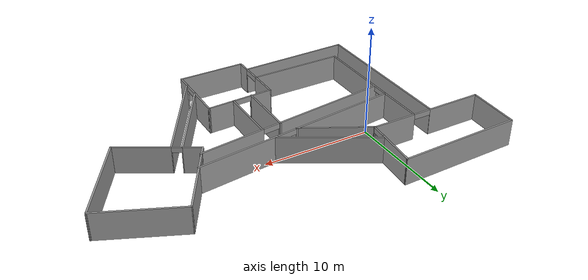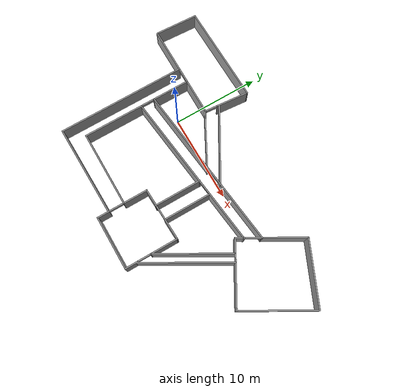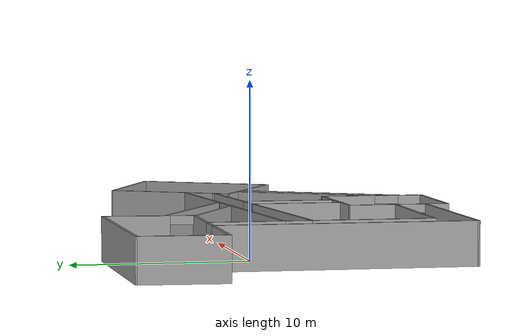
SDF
<?xml version='1.0'?>
<sdf version='1.7'>
  <model name='room1'>
    <pose>7.83202 -2.46047 0 0 -0 0</pose>
    <link name='Wall_10'>
      <pose>0.961693 -4.43326 0 0 -0 -3.10063</pose>
      <visual name='Wall_10_Visual_0'>
        <pose>-1.83632 0 1.25 0 -0 0</pose>
        <geometry>
          <box>
            <size>2.58248 0.15 2.5</size>
          </box>
        </geometry>
        <material>
          <script>
            <uri>file://media/materials/scripts/gazebo.material</uri>
            <name>Gazebo/Grey</name>
          </script>
          <ambient>1 1 1 1</ambient>
        </material>
        <meta>
          <layer>0</layer>
        </meta>
      </visual>
      <collision name='Wall_10_Collision_0'>
        <geometry>
          <box>
            <size>2.58248 0.15 2.5</size>
          </box>
        </geometry>
        <pose>-1.83632 0 1.25 0 -0 0</pose>
      </collision>
      <visual name='Wall_10_Visual_1'>
        <pose>2.09137 0 1.25 0 -0 0</pose>
        <geometry>
          <box>
            <size>2.07238 0.15 2.5</size>
          </box>
        </geometry>
        <material>
          <script>
            <uri>file://media/materials/scripts/gazebo.material</uri>
            <name>Gazebo/Grey</name>
          </script>
          <ambient>1 1 1 1</ambient>
        </material>
        <meta>
          <layer>0</layer>
        </meta>
      </visual>
      <collision name='Wall_10_Collision_1'>
        <geometry>
          <box>
            <size>2.07238 0.15 2.5</size>
          </box>
        </geometry>
        <pose>2.09137 0 1.25 0 -0 0</pose>
      </collision>
      <visual name='Wall_10_Visual_2'>
        <pose>0.255047 0 2.25 0 -0 0</pose>
        <geometry>
          <box>
            <size>1.60026 0.15 0.5</size>
          </box>
        </geometry>
        <material>
          <script>
            <uri>file://media/materials/scripts/gazebo.material</uri>
            <name>Gazebo/Grey</name>
          </script>
          <ambient>1 1 1 1</ambient>
        </material>
        <meta>
          <layer>0</layer>
        </meta>
      </visual>
      <collision name='Wall_10_Collision_2'>
        <geometry>
          <box>
            <size>1.60026 0.15 0.5</size>
          </box>
        </geometry>
        <pose>0.255047 0 2.25 0 -0 0</pose>
      </collision>
    </link>
    <link name='Wall_12'>
      <pose>8.84918 4.22502 0 0 -0 -2.0944</pose>
      <visual name='Wall_12_Visual_0'>
        <pose>-1.39281 0 1.25 0 -0 0</pose>
        <geometry>
          <box>
            <size>4.96438 0.15 2.5</size>
          </box>
        </geometry>
        <material>
          <script>
            <uri>file://media/materials/scripts/gazebo.material</uri>
            <name>Gazebo/Grey</name>
          </script>
          <ambient>1 1 1 1</ambient>
        </material>
        <meta>
          <layer>0</layer>
        </meta>
      </visual>
      <collision name='Wall_12_Collision_0'>
        <geometry>
          <box>
            <size>4.96438 0.15 2.5</size>
          </box>
        </geometry>
        <pose>-1.39281 0 1.25 0 -0 0</pose>
      </collision>
      <visual name='Wall_12_Visual_1'>
        <pose>3.31496 0 1.25 0 -0 0</pose>
        <geometry>
          <box>
            <size>1.12008 0.15 2.5</size>
          </box>
        </geometry>
        <material>
          <script>
            <uri>file://media/materials/scripts/gazebo.material</uri>
            <name>Gazebo/Grey</name>
          </script>
          <ambient>1 1 1 1</ambient>
        </material>
        <meta>
          <layer>0</layer>
        </meta>
      </visual>
      <collision name='Wall_12_Collision_1'>
        <geometry>
          <box>
            <size>1.12008 0.15 2.5</size>
          </box>
        </geometry>
        <pose>3.31496 0 1.25 0 -0 0</pose>
      </collision>
      <visual name='Wall_12_Visual_2'>
        <pose>1.92215 0 2.25 0 -0 0</pose>
        <geometry>
          <box>
            <size>1.66555 0.15 0.5</size>
          </box>
        </geometry>
        <material>
          <script>
            <uri>file://media/materials/scripts/gazebo.material</uri>
            <name>Gazebo/Grey</name>
          </script>
          <ambient>1 1 1 1</ambient>
        </material>
        <meta>
          <layer>0</layer>
        </meta>
      </visual>
      <collision name='Wall_12_Collision_2'>
        <geometry>
          <box>
            <size>1.66555 0.15 0.5</size>
          </box>
        </geometry>
        <pose>1.92215 0 2.25 0 -0 0</pose>
      </collision>
    </link>
    <link name='Wall_13'>
      <pose>10.1318 -0.903373 0 0 -0 -0.523599</pose>
      <visual name='Wall_13_Visual_0'>
        <pose>-2.90355 0 1.25 0 -0 0</pose>
        <geometry>
          <box>
            <size>1.69289 0.15 2.5</size>
          </box>
        </geometry>
        <material>
          <script>
            <uri>file://media/materials/scripts/gazebo.material</uri>
            <name>Gazebo/Grey</name>
          </script>
          <ambient>1 1 1 1</ambient>
        </material>
        <meta>
          <layer>0</layer>
        </meta>
      </visual>
      <collision name='Wall_13_Collision_0'>
        <geometry>
          <box>
            <size>1.69289 0.15 2.5</size>
          </box>
        </geometry>
        <pose>-2.90355 0 1.25 0 -0 0</pose>
      </collision>
      <visual name='Wall_13_Visual_1'>
        <pose>1.29645 0 1.25 0 -0 0</pose>
        <geometry>
          <box>
            <size>4.90711 0.15 2.5</size>
          </box>
        </geometry>
        <material>
          <script>
            <uri>file://media/materials/scripts/gazebo.material</uri>
            <name>Gazebo/Grey</name>
          </script>
          <ambient>1 1 1 1</ambient>
        </material>
        <meta>
          <layer>0</layer>
        </meta>
      </visual>
      <collision name='Wall_13_Collision_1'>
        <geometry>
          <box>
            <size>4.90711 0.15 2.5</size>
          </box>
        </geometry>
        <pose>1.29645 0 1.25 0 -0 0</pose>
      </collision>
      <visual name='Wall_13_Visual_2'>
        <pose>-1.60711 0 2.25 0 -0 0</pose>
        <geometry>
          <box>
            <size>0.9 0.15 0.5</size>
          </box>
        </geometry>
        <material>
          <script>
            <uri>file://media/materials/scripts/gazebo.material</uri>
            <name>Gazebo/Grey</name>
          </script>
          <ambient>1 1 1 1</ambient>
        </material>
        <meta>
          <layer>0</layer>
        </meta>
      </visual>
      <collision name='Wall_13_Collision_2'>
        <geometry>
          <box>
            <size>0.9 0.15 0.5</size>
          </box>
        </geometry>
        <pose>-1.60711 0 2.25 0 -0 0</pose>
      </collision>
    </link>
    <link name='Wall_14'>
      <collision name='Wall_14_Collision'>
        <geometry>
          <box>
            <size>8.5 0.15 2.5</size>
          </box>
        </geometry>
        <pose>0 0 1.25 0 -0 0</pose>
      </collision>
      <visual name='Wall_14_Visual'>
        <pose>0 0 1.25 0 -0 0</pose>
        <geometry>
          <box>
            <size>8.5 0.15 2.5</size>
          </box>
        </geometry>
        <material>
          <script>
            <uri>file://media/materials/scripts/gazebo.material</uri>
            <name>Gazebo/Grey</name>
          </script>
          <ambient>1 1 1 1</ambient>
        </material>
        <meta>
          <layer>0</layer>
        </meta>
      </visual>
      <pose>15.402 0.874783 0 0 -0 1.0472</pose>
    </link>
    <link name='Wall_15'>
      <collision name='Wall_15_Collision'>
        <geometry>
          <box>
            <size>7.53817 0.15 2.5</size>
          </box>
        </geometry>
        <pose>0 0 1.25 0 -0 0</pose>
      </collision>
      <visual name='Wall_15_Visual'>
        <pose>0 0 1.25 0 -0 0</pose>
        <geometry>
          <box>
            <size>7.53817 0.15 2.5</size>
          </box>
        </geometry>
        <material>
          <script>
            <uri>file://media/materials/scripts/gazebo.material</uri>
            <name>Gazebo/Grey</name>
          </script>
          <ambient>1 1 1 1</ambient>
        </material>
        <meta>
          <layer>0</layer>
        </meta>
      </visual>
      <pose>14.1193 6.00318 0 0 -0 2.71968</pose>
    </link>
    <link name='Wall_18'>
      <collision name='Wall_18_Collision'>
        <geometry>
          <box>
            <size>14.75 0.15 2.5</size>
          </box>
        </geometry>
        <pose>0 0 1.25 0 -0 0</pose>
      </collision>
      <visual name='Wall_18_Visual'>
        <pose>0 0 1.25 0 -0 0</pose>
        <geometry>
          <box>
            <size>14.75 0.15 2.5</size>
          </box>
        </geometry>
        <material>
          <script>
            <uri>file://media/materials/scripts/gazebo.material</uri>
            <name>Gazebo/Grey</name>
          </script>
          <ambient>1 1 1 1</ambient>
        </material>
        <meta>
          <layer>0</layer>
        </meta>
      </visual>
      <pose>-12.4545 -1.98522 0 0 -0 -1.5708</pose>
    </link>
    <link name='Wall_19'>
      <collision name='Wall_19_Collision'>
        <geometry>
          <box>
            <size>10.4672 0.15 2.5</size>
          </box>
        </geometry>
        <pose>0 0 1.25 0 -0 0</pose>
      </collision>
      <visual name='Wall_19_Visual'>
        <pose>0 0 1.25 0 -0 0</pose>
        <geometry>
          <box>
            <size>10.4672 0.15 2.5</size>
          </box>
        </geometry>
        <material>
          <script>
            <uri>file://media/materials/scripts/gazebo.material</uri>
            <name>Gazebo/Grey</name>
          </script>
          <ambient>1 1 1 1</ambient>
        </material>
        <meta>
          <layer>0</layer>
        </meta>
      </visual>
      <pose>-7.2965 -9.20445 0 0 -0 0.015658</pose>
    </link>
    <link name='Wall_2'>
      <collision name='Wall_2_Collision'>
        <geometry>
          <box>
            <size>4.94332 0.15 2.5</size>
          </box>
        </geometry>
        <pose>0 0 1.25 0 -0 0</pose>
      </collision>
      <visual name='Wall_2_Visual'>
        <pose>0 0 1.25 0 -0 0</pose>
        <geometry>
          <box>
            <size>4.94332 0.15 2.5</size>
          </box>
        </geometry>
        <material>
          <script>
            <uri>file://media/materials/scripts/gazebo.material</uri>
            <name>Gazebo/Grey</name>
          </script>
          <ambient>1 1 1 1</ambient>
        </material>
        <meta>
          <layer>0</layer>
        </meta>
      </visual>
      <pose>-17.3906 7.74557 0 0 -0 -1.62198</pose>
    </link>
    <link name='Wall_22'>
      <pose>-10.7072 -1.00533 0 0 -0 -1.5708</pose>
      <visual name='Wall_22_Visual_0'>
        <pose>-4.21418 0 1.25 0 -0 0</pose>
        <geometry>
          <box>
            <size>4.32164 0.15 2.5</size>
          </box>
        </geometry>
        <material>
          <script>
            <uri>file://media/materials/scripts/gazebo.material</uri>
            <name>Gazebo/Grey</name>
          </script>
          <ambient>1 1 1 1</ambient>
        </material>
        <meta>
          <layer>0</layer>
        </meta>
      </visual>
      <collision name='Wall_22_Collision_0'>
        <geometry>
          <box>
            <size>4.32164 0.15 2.5</size>
          </box>
        </geometry>
        <pose>-4.21418 0 1.25 0 -0 0</pose>
      </collision>
      <visual name='Wall_22_Visual_1'>
        <pose>2.89516 0 1.25 0 -0 0</pose>
        <geometry>
          <box>
            <size>6.95969 0.15 2.5</size>
          </box>
        </geometry>
        <material>
          <script>
            <uri>file://media/materials/scripts/gazebo.material</uri>
            <name>Gazebo/Grey</name>
          </script>
          <ambient>1 1 1 1</ambient>
        </material>
        <meta>
          <layer>0</layer>
        </meta>
      </visual>
      <collision name='Wall_22_Collision_1'>
        <geometry>
          <box>
            <size>6.95969 0.15 2.5</size>
          </box>
        </geometry>
        <pose>2.89516 0 1.25 0 -0 0</pose>
      </collision>
      <visual name='Wall_22_Visual_2'>
        <pose>-1.31902 0 2.25 0 -0 0</pose>
        <geometry>
          <box>
            <size>1.46867 0.15 0.5</size>
          </box>
        </geometry>
        <material>
          <script>
            <uri>file://media/materials/scripts/gazebo.material</uri>
            <name>Gazebo/Grey</name>
          </script>
          <ambient>1 1 1 1</ambient>
        </material>
        <meta>
          <layer>0</layer>
        </meta>
      </visual>
      <collision name='Wall_22_Collision_2'>
        <geometry>
          <box>
            <size>1.46867 0.15 0.5</size>
          </box>
        </geometry>
        <pose>-1.31902 0 2.25 0 -0 0</pose>
      </collision>
    </link>
    <link name='Wall_23'>
      <collision name='Wall_23_Collision'>
        <geometry>
          <box>
            <size>8.71502 0.15 2.5</size>
          </box>
        </geometry>
        <pose>0 0 1.25 0 -0 0</pose>
      </collision>
      <visual name='Wall_23_Visual'>
        <pose>0 0 1.25 0 -0 0</pose>
        <geometry>
          <box>
            <size>8.71502 0.15 2.5</size>
          </box>
        </geometry>
        <material>
          <script>
            <uri>file://media/materials/scripts/gazebo.material</uri>
            <name>Gazebo/Grey</name>
          </script>
          <ambient>1 1 1 1</ambient>
        </material>
        <meta>
          <layer>0</layer>
        </meta>
      </visual>
      <pose>-6.4072 -7.30533 0 0 -0 0</pose>
    </link>
    <link name='Wall_25'>
      <collision name='Wall_25_Collision'>
        <geometry>
          <box>
            <size>8.75 0.15 2.5</size>
          </box>
        </geometry>
        <pose>0 0 1.25 0 -0 0</pose>
      </collision>
      <visual name='Wall_25_Visual'>
        <pose>0 0 1.25 0 -0 0</pose>
        <geometry>
          <box>
            <size>8.75 0.15 2.5</size>
          </box>
        </geometry>
        <material>
          <script>
            <uri>file://media/materials/scripts/gazebo.material</uri>
            <name>Gazebo/Grey</name>
          </script>
          <ambient>1 1 1 1</ambient>
        </material>
        <meta>
          <layer>0</layer>
        </meta>
      </visual>
      <pose>6.18867 -3.62482 0 0 -0 1.0472</pose>
    </link>
    <link name='Wall_28'>
      <collision name='Wall_28_Collision'>
        <geometry>
          <box>
            <size>10.25 0.15 2.5</size>
          </box>
        </geometry>
        <pose>0 0 1.25 0 -0 0</pose>
      </collision>
      <visual name='Wall_28_Visual'>
        <pose>0 0 1.25 0 -0 0</pose>
        <geometry>
          <box>
            <size>10.25 0.15 2.5</size>
          </box>
        </geometry>
        <material>
          <script>
            <uri>file://media/materials/scripts/gazebo.material</uri>
            <name>Gazebo/Grey</name>
          </script>
          <ambient>1 1 1 1</ambient>
        </material>
        <meta>
          <layer>0</layer>
        </meta>
      </visual>
      <pose>6.6039 -4.72518 0 0 -0 1.0472</pose>
    </link>
    <link name='Wall_3'>
      <pose>-12.0693 5.3431 0 0 -0 -0.001648</pose>
      <visual name='Wall_3_Visual_0'>
        <pose>-2.91198 0 1.25 0 -0 0</pose>
        <geometry>
          <box>
            <size>5.19651 0.15 2.5</size>
          </box>
        </geometry>
        <material>
          <script>
            <uri>file://media/materials/scripts/gazebo.material</uri>
            <name>Gazebo/Grey</name>
          </script>
          <ambient>1 1 1 1</ambient>
        </material>
        <meta>
          <layer>0</layer>
        </meta>
      </visual>
      <collision name='Wall_3_Collision_0'>
        <geometry>
          <box>
            <size>5.19651 0.15 2.5</size>
          </box>
        </geometry>
        <pose>-2.91198 0 1.25 0 -0 0</pose>
      </collision>
      <visual name='Wall_3_Visual_1'>
        <pose>3.41877 0 1.25 0 -0 0</pose>
        <geometry>
          <box>
            <size>4.18295 0.15 2.5</size>
          </box>
        </geometry>
        <material>
          <script>
            <uri>file://media/materials/scripts/gazebo.material</uri>
            <name>Gazebo/Grey</name>
          </script>
          <ambient>1 1 1 1</ambient>
        </material>
        <meta>
          <layer>0</layer>
        </meta>
      </visual>
      <collision name='Wall_3_Collision_1'>
        <geometry>
          <box>
            <size>4.18295 0.15 2.5</size>
          </box>
        </geometry>
        <pose>3.41877 0 1.25 0 -0 0</pose>
      </collision>
      <visual name='Wall_3_Visual_2'>
        <pose>0.506783 0 2.25 0 -0 0</pose>
        <geometry>
          <box>
            <size>1.64102 0.15 0.5</size>
          </box>
        </geometry>
        <material>
          <script>
            <uri>file://media/materials/scripts/gazebo.material</uri>
            <name>Gazebo/Grey</name>
          </script>
          <ambient>1 1 1 1</ambient>
        </material>
        <meta>
          <layer>0</layer>
        </meta>
      </visual>
      <collision name='Wall_3_Collision_2'>
        <geometry>
          <box>
            <size>1.64102 0.15 0.5</size>
          </box>
        </geometry>
        <pose>0.506783 0 2.25 0 -0 0</pose>
      </collision>
    </link>
    <link name='Wall_31'>
      <pose>-1.14578 2.2514 0 0 -0 0.115873</pose>
      <visual name='Wall_31_Visual_0'>
        <pose>-4.68047 0 1.25 0 -0 0</pose>
        <geometry>
          <box>
            <size>9.93796 0.15 2.5</size>
          </box>
        </geometry>
        <material>
          <script>
            <uri>file://media/materials/scripts/gazebo.material</uri>
            <name>Gazebo/Grey</name>
          </script>
          <ambient>1 1 1 1</ambient>
        </material>
        <meta>
          <layer>0</layer>
        </meta>
      </visual>
      <collision name='Wall_31_Collision_0'>
        <geometry>
          <box>
            <size>9.93796 0.15 2.5</size>
          </box>
        </geometry>
        <pose>-4.68047 0 1.25 0 -0 0</pose>
      </collision>
      <visual name='Wall_31_Visual_1'>
        <pose>5.87894 0 1.25 0 -0 0</pose>
        <geometry>
          <box>
            <size>7.54101 0.15 2.5</size>
          </box>
        </geometry>
        <material>
          <script>
            <uri>file://media/materials/scripts/gazebo.material</uri>
            <name>Gazebo/Grey</name>
          </script>
          <ambient>1 1 1 1</ambient>
        </material>
        <meta>
          <layer>0</layer>
        </meta>
      </visual>
      <collision name='Wall_31_Collision_1'>
        <geometry>
          <box>
            <size>7.54101 0.15 2.5</size>
          </box>
        </geometry>
        <pose>5.87894 0 1.25 0 -0 0</pose>
      </collision>
      <visual name='Wall_31_Visual_2'>
        <pose>1.19848 0 2.25 0 -0 0</pose>
        <geometry>
          <box>
            <size>1.81993 0.15 0.5</size>
          </box>
        </geometry>
        <material>
          <script>
            <uri>file://media/materials/scripts/gazebo.material</uri>
            <name>Gazebo/Grey</name>
          </script>
          <ambient>1 1 1 1</ambient>
        </material>
        <meta>
          <layer>0</layer>
        </meta>
      </visual>
      <collision name='Wall_31_Collision_2'>
        <geometry>
          <box>
            <size>1.81993 0.15 0.5</size>
          </box>
        </geometry>
        <pose>1.19848 0 2.25 0 -0 0</pose>
      </collision>
    </link>
    <link name='Wall_33'>
      <pose>-1.62804 0.618027 0 0 -0 0.118665</pose>
      <visual name='Wall_33_Visual_0'>
        <pose>-3.82796 0 1.25 0 -0 0</pose>
        <geometry>
          <box>
            <size>10.7827 0.15 2.5</size>
          </box>
        </geometry>
        <material>
          <script>
            <uri>file://media/materials/scripts/gazebo.material</uri>
            <name>Gazebo/Grey</name>
          </script>
          <ambient>1 1 1 1</ambient>
        </material>
        <meta>
          <layer>0</layer>
        </meta>
      </visual>
      <collision name='Wall_33_Collision_0'>
        <geometry>
          <box>
            <size>10.7827 0.15 2.5</size>
          </box>
        </geometry>
        <pose>-3.82796 0 1.25 0 -0 0</pose>
      </collision>
      <visual name='Wall_33_Visual_1'>
        <pose>6.18412 0 1.25 0 -0 0</pose>
        <geometry>
          <box>
            <size>6.07033 0.15 2.5</size>
          </box>
        </geometry>
        <material>
          <script>
            <uri>file://media/materials/scripts/gazebo.material</uri>
            <name>Gazebo/Grey</name>
          </script>
          <ambient>1 1 1 1</ambient>
        </material>
        <meta>
          <layer>0</layer>
        </meta>
      </visual>
      <collision name='Wall_33_Collision_1'>
        <geometry>
          <box>
            <size>6.07033 0.15 2.5</size>
          </box>
        </geometry>
        <pose>6.18412 0 1.25 0 -0 0</pose>
      </collision>
      <visual name='Wall_33_Visual_2'>
        <pose>2.35616 0 2.25 0 -0 0</pose>
        <geometry>
          <box>
            <size>1.58558 0.15 0.5</size>
          </box>
        </geometry>
        <material>
          <script>
            <uri>file://media/materials/scripts/gazebo.material</uri>
            <name>Gazebo/Grey</name>
          </script>
          <ambient>1 1 1 1</ambient>
        </material>
        <meta>
          <layer>0</layer>
        </meta>
      </visual>
      <collision name='Wall_33_Collision_2'>
        <geometry>
          <box>
            <size>1.58558 0.15 0.5</size>
          </box>
        </geometry>
        <pose>2.35616 0 2.25 0 -0 0</pose>
      </collision>
    </link>
    <link name='Wall_35'>
      <collision name='Wall_35_Collision'>
        <geometry>
          <box>
            <size>5.5 0.15 2.5</size>
          </box>
        </geometry>
        <pose>0 0 1.25 0 -0 0</pose>
      </collision>
      <visual name='Wall_35_Visual'>
        <pose>0 0 1.25 0 -0 0</pose>
        <geometry>
          <box>
            <size>5.5 0.15 2.5</size>
          </box>
        </geometry>
        <material>
          <script>
            <uri>file://media/materials/scripts/gazebo.material</uri>
            <name>Gazebo/Grey</name>
          </script>
          <ambient>1 1 1 1</ambient>
        </material>
        <meta>
          <layer>0</layer>
        </meta>
      </visual>
      <pose>-0.174531 -1.85567 0 0 -0 1.5708</pose>
    </link>
    <link name='Wall_37'>
      <collision name='Wall_37_Collision'>
        <geometry>
          <box>
            <size>5.5 0.15 2.5</size>
          </box>
        </geometry>
        <pose>0 0 1.25 0 -0 0</pose>
      </collision>
      <visual name='Wall_37_Visual'>
        <pose>0 0 1.25 0 -0 0</pose>
        <geometry>
          <box>
            <size>5.5 0.15 2.5</size>
          </box>
        </geometry>
        <material>
          <script>
            <uri>file://media/materials/scripts/gazebo.material</uri>
            <name>Gazebo/Grey</name>
          </script>
          <ambient>1 1 1 1</ambient>
        </material>
        <meta>
          <layer>0</layer>
        </meta>
      </visual>
      <pose>1.61558 -1.71487 0 0 -0 1.5708</pose>
    </link>
    <link name='Wall_39'>
      <collision name='Wall_39_Collision'>
        <geometry>
          <box>
            <size>6.69138 0.15 2.5</size>
          </box>
        </geometry>
        <pose>0 0 1.25 0 -0 0</pose>
      </collision>
      <visual name='Wall_39_Visual'>
        <pose>0 0 1.25 0 -0 0</pose>
        <geometry>
          <box>
            <size>6.69138 0.15 2.5</size>
          </box>
        </geometry>
        <material>
          <script>
            <uri>file://media/materials/scripts/gazebo.material</uri>
            <name>Gazebo/Grey</name>
          </script>
          <ambient>1 1 1 1</ambient>
        </material>
        <meta>
          <layer>0</layer>
        </meta>
      </visual>
      <pose>-3.84556 3.76479 0 0 -0 -0.491435</pose>
    </link>
    <link name='Wall_4'>
      <pose>-6.41257 7.86162 0 0 -0 1.48338</pose>
      <visual name='Wall_4_Visual_0'>
        <pose>-2.53786 0 1.25 0 -0 0</pose>
        <geometry>
          <box>
            <size>0.147856 0.15 2.5</size>
          </box>
        </geometry>
        <material>
          <script>
            <uri>file://media/materials/scripts/gazebo.material</uri>
            <name>Gazebo/Grey</name>
          </script>
          <ambient>1 1 1 1</ambient>
        </material>
        <meta>
          <layer>0</layer>
        </meta>
      </visual>
      <collision name='Wall_4_Collision_0'>
        <geometry>
          <box>
            <size>0.147856 0.15 2.5</size>
          </box>
        </geometry>
        <pose>-2.53786 0 1.25 0 -0 0</pose>
      </collision>
      <visual name='Wall_4_Visual_1'>
        <pose>0.723928 0 1.25 0 -0 0</pose>
        <geometry>
          <box>
            <size>3.77572 0.15 2.5</size>
          </box>
        </geometry>
        <material>
          <script>
            <uri>file://media/materials/scripts/gazebo.material</uri>
            <name>Gazebo/Grey</name>
          </script>
          <ambient>1 1 1 1</ambient>
        </material>
        <meta>
          <layer>0</layer>
        </meta>
      </visual>
      <collision name='Wall_4_Collision_1'>
        <geometry>
          <box>
            <size>3.77572 0.15 2.5</size>
          </box>
        </geometry>
        <pose>0.723928 0 1.25 0 -0 0</pose>
      </collision>
      <visual name='Wall_4_Visual_2'>
        <pose>-1.81393 0 2.25 0 -0 0</pose>
        <geometry>
          <box>
            <size>1.3 0.15 0.5</size>
          </box>
        </geometry>
        <material>
          <script>
            <uri>file://media/materials/scripts/gazebo.material</uri>
            <name>Gazebo/Grey</name>
          </script>
          <ambient>1 1 1 1</ambient>
        </material>
        <meta>
          <layer>0</layer>
        </meta>
      </visual>
      <collision name='Wall_4_Collision_2'>
        <geometry>
          <box>
            <size>1.3 0.15 0.5</size>
          </box>
        </geometry>
        <pose>-1.81393 0 2.25 0 -0 0</pose>
      </collision>
    </link>
    <link name='Wall_41'>
      <collision name='Wall_41_Collision'>
        <geometry>
          <box>
            <size>9 0.15 2.5</size>
          </box>
        </geometry>
        <pose>0 0 1.25 0 -0 0</pose>
      </collision>
      <visual name='Wall_41_Visual'>
        <pose>0 0 1.25 0 -0 0</pose>
        <geometry>
          <box>
            <size>9 0.15 2.5</size>
          </box>
        </geometry>
        <material>
          <script>
            <uri>file://media/materials/scripts/gazebo.material</uri>
            <name>Gazebo/Grey</name>
          </script>
          <ambient>1 1 1 1</ambient>
        </material>
        <meta>
          <layer>0</layer>
        </meta>
      </visual>
      <pose>-2.53735 4.74168 0 0 -0 -0.523599</pose>
    </link>
    <link name='Wall_5'>
      <collision name='Wall_5_Collision'>
        <geometry>
          <box>
            <size>11.2297 0.15 2.5</size>
          </box>
        </geometry>
        <pose>0 0 1.25 0 -0 0</pose>
      </collision>
      <visual name='Wall_5_Visual'>
        <pose>0 0 1.25 0 -0 0</pose>
        <geometry>
          <box>
            <size>11.2297 0.15 2.5</size>
          </box>
        </geometry>
        <material>
          <script>
            <uri>file://media/materials/scripts/gazebo.material</uri>
            <name>Gazebo/Grey</name>
          </script>
          <ambient>1 1 1 1</ambient>
        </material>
        <meta>
          <layer>0</layer>
        </meta>
      </visual>
      <pose>-11.7295 10.2816 0 0 -0 -3.11903</pose>
    </link>
    <link name='Wall_7'>
      <pose>-2.08831 -7.48326 0 0 -0 -1.5708</pose>
      <visual name='Wall_7_Visual_0'>
        <pose>-1.57227 0 1.25 0 -0 0</pose>
        <geometry>
          <box>
            <size>2.85547 0.15 2.5</size>
          </box>
        </geometry>
        <material>
          <script>
            <uri>file://media/materials/scripts/gazebo.material</uri>
            <name>Gazebo/Grey</name>
          </script>
          <ambient>1 1 1 1</ambient>
        </material>
        <meta>
          <layer>0</layer>
        </meta>
      </visual>
      <collision name='Wall_7_Collision_0'>
        <geometry>
          <box>
            <size>2.85547 0.15 2.5</size>
          </box>
        </geometry>
        <pose>-1.57227 0 1.25 0 -0 0</pose>
      </collision>
      <visual name='Wall_7_Visual_1'>
        <pose>2.29006 0 1.25 0 -0 0</pose>
        <geometry>
          <box>
            <size>1.41987 0.15 2.5</size>
          </box>
        </geometry>
        <material>
          <script>
            <uri>file://media/materials/scripts/gazebo.material</uri>
            <name>Gazebo/Grey</name>
          </script>
          <ambient>1 1 1 1</ambient>
        </material>
        <meta>
          <layer>0</layer>
        </meta>
      </visual>
      <collision name='Wall_7_Collision_1'>
        <geometry>
          <box>
            <size>1.41987 0.15 2.5</size>
          </box>
        </geometry>
        <pose>2.29006 0 1.25 0 -0 0</pose>
      </collision>
      <visual name='Wall_7_Visual_2'>
        <pose>0.717799 0 2.25 0 -0 0</pose>
        <geometry>
          <box>
            <size>1.72466 0.15 0.5</size>
          </box>
        </geometry>
        <material>
          <script>
            <uri>file://media/materials/scripts/gazebo.material</uri>
            <name>Gazebo/Grey</name>
          </script>
          <ambient>1 1 1 1</ambient>
        </material>
        <meta>
          <layer>0</layer>
        </meta>
      </visual>
      <collision name='Wall_7_Collision_2'>
        <geometry>
          <box>
            <size>1.72466 0.15 0.5</size>
          </box>
        </geometry>
        <pose>0.717799 0 2.25 0 -0 0</pose>
      </collision>
    </link>
    <link name='Wall_8'>
      <collision name='Wall_8_Collision'>
        <geometry>
          <box>
            <size>6.25 0.15 2.5</size>
          </box>
        </geometry>
        <pose>0 0 1.25 0 -0 0</pose>
      </collision>
      <visual name='Wall_8_Visual'>
        <pose>0 0 1.25 0 -0 0</pose>
        <geometry>
          <box>
            <size>6.25 0.15 2.5</size>
          </box>
        </geometry>
        <material>
          <script>
            <uri>file://media/materials/scripts/gazebo.material</uri>
            <name>Gazebo/Grey</name>
          </script>
          <ambient>1 1 1 1</ambient>
        </material>
        <meta>
          <layer>0</layer>
        </meta>
      </visual>
      <pose>0.961693 -10.4083 0 0 -0 0</pose>
    </link>
    <link name='Wall_9'>
      <pose>4.01169 -7.35826 0 0 -0 1.5708</pose>
      <visual name='Wall_9_Visual_0'>
        <pose>-2.36575 0 1.25 0 -0 0</pose>
        <geometry>
          <box>
            <size>1.51849 0.15 2.5</size>
          </box>
        </geometry>
        <material>
          <script>
            <uri>file://media/materials/scripts/gazebo.material</uri>
            <name>Gazebo/Grey</name>
          </script>
          <ambient>1 1 1 1</ambient>
        </material>
        <meta>
          <layer>0</layer>
        </meta>
      </visual>
      <collision name='Wall_9_Collision_0'>
        <geometry>
          <box>
            <size>1.51849 0.15 2.5</size>
          </box>
        </geometry>
        <pose>-2.36575 0 1.25 0 -0 0</pose>
      </collision>
      <visual name='Wall_9_Visual_1'>
        <pose>1.49142 0 1.25 0 -0 0</pose>
        <geometry>
          <box>
            <size>3.26716 0.15 2.5</size>
          </box>
        </geometry>
        <material>
          <script>
            <uri>file://media/materials/scripts/gazebo.material</uri>
            <name>Gazebo/Grey</name>
          </script>
          <ambient>1 1 1 1</ambient>
        </material>
        <meta>
          <layer>0</layer>
        </meta>
      </visual>
      <collision name='Wall_9_Collision_1'>
        <geometry>
          <box>
            <size>3.26716 0.15 2.5</size>
          </box>
        </geometry>
        <pose>1.49142 0 1.25 0 -0 0</pose>
      </collision>
      <visual name='Wall_9_Visual_2'>
        <pose>-0.874331 0 2.25 0 -0 0</pose>
        <geometry>
          <box>
            <size>1.46435 0.15 0.5</size>
          </box>
        </geometry>
        <material>
          <script>
            <uri>file://media/materials/scripts/gazebo.material</uri>
            <name>Gazebo/Grey</name>
          </script>
          <ambient>1 1 1 1</ambient>
        </material>
        <meta>
          <layer>0</layer>
        </meta>
      </visual>
      <collision name='Wall_9_Collision_2'>
        <geometry>
          <box>
            <size>1.46435 0.15 0.5</size>
          </box>
        </geometry>
        <pose>-0.874331 0 2.25 0 -0 0</pose>
      </collision>
    </link>
    <static>1</static>
  </model>
</sdf>
